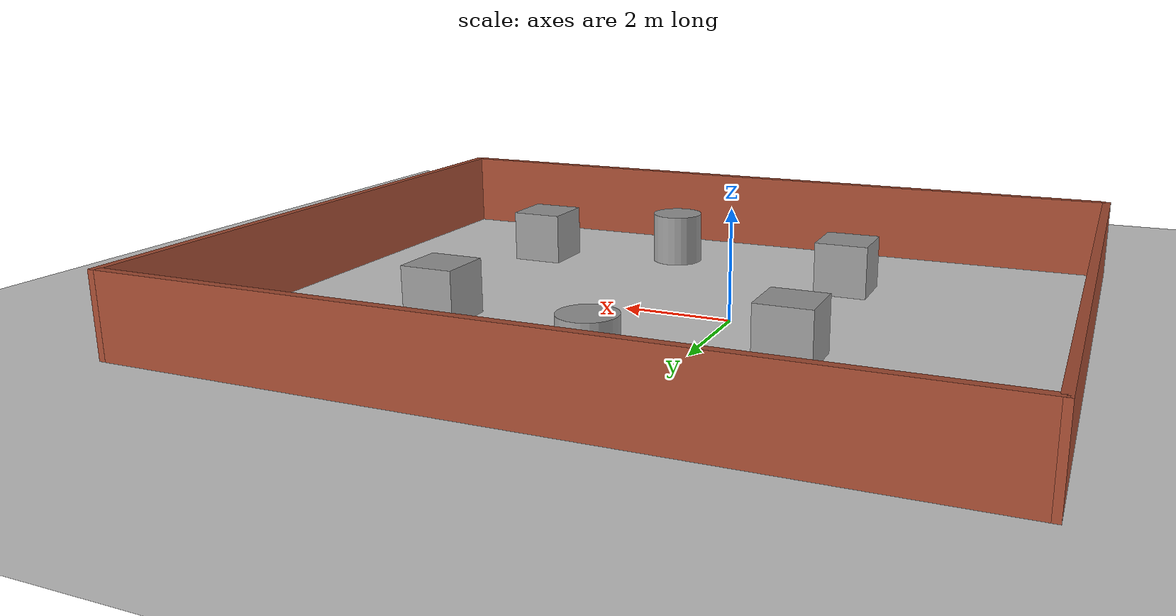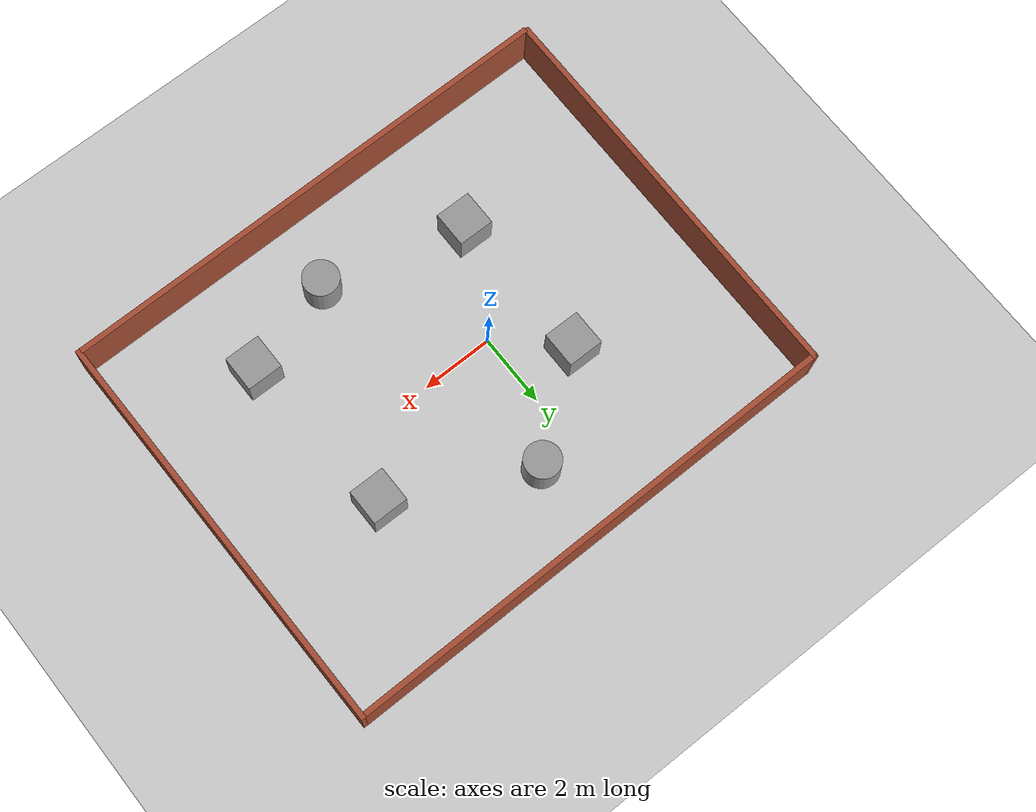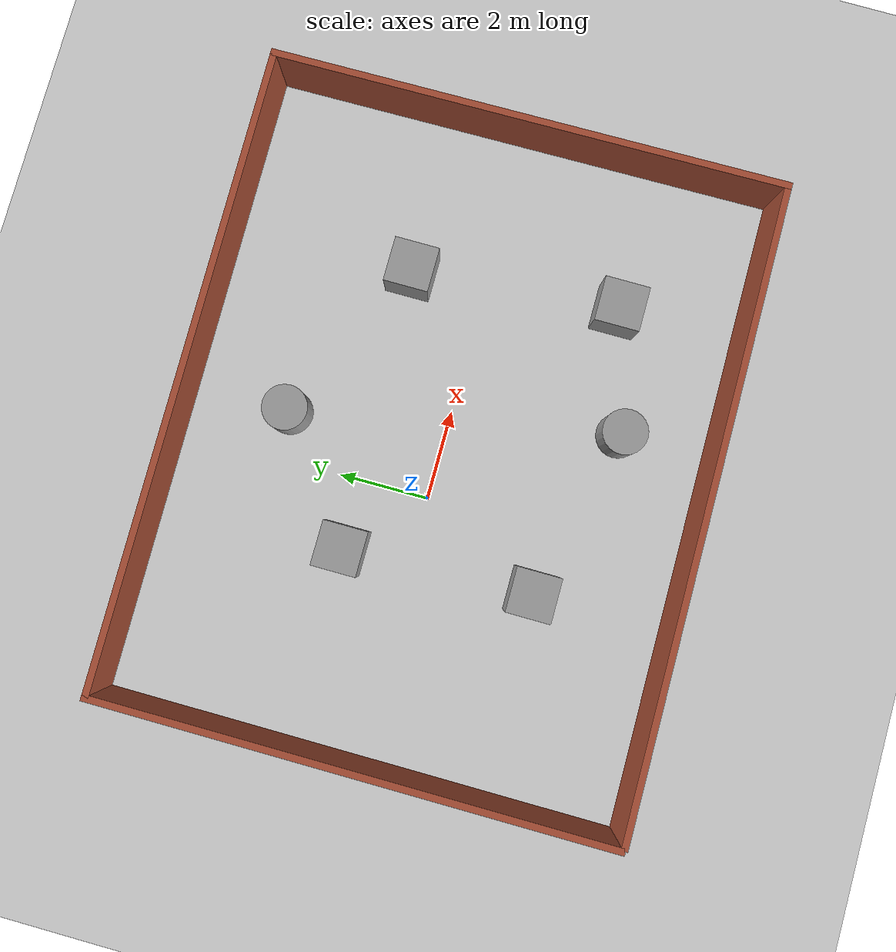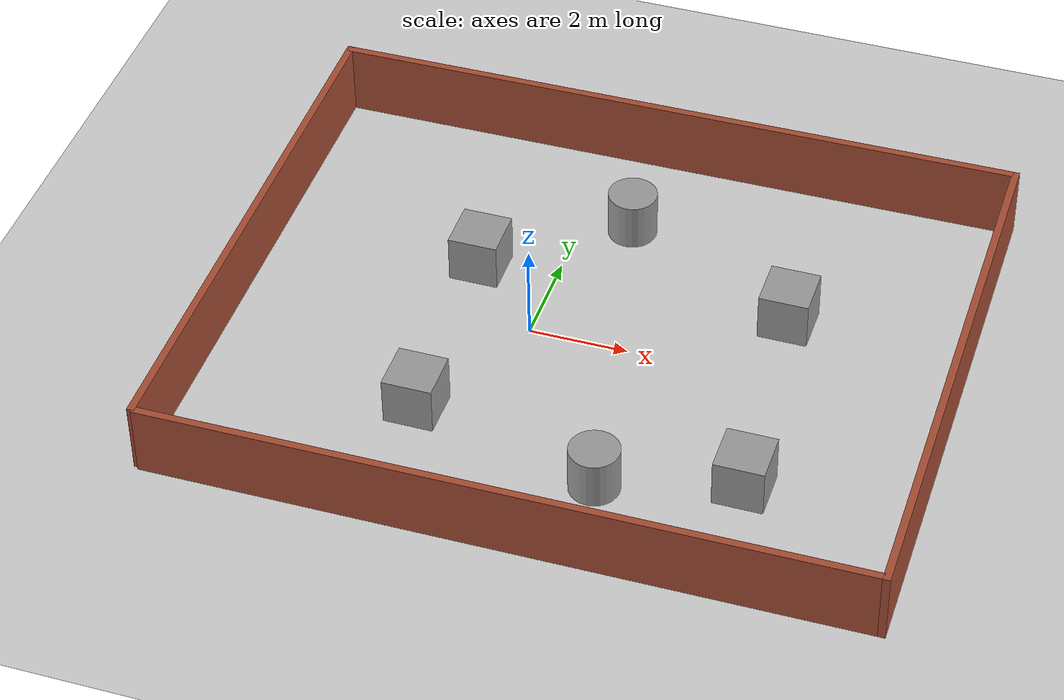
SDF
<sdf version="1.6">
 <world name="default">
  <scene><ambient>0.4 0.4 0.4 1</ambient><background>0.7 0.7 0.7 1</background><shadows>1</shadows></scene>
  <light name="sun" type="directional">
   <pose>0 0 10 0 -0 0</pose>
   <diffuse>0.8 0.8 0.8 1</diffuse>
   <specular>0.2 0.2 0.2 1</specular>
   <attenuation>
    <range>1000</range>
    <constant>0.9</constant>
    <linear>0.01</linear>
    <quadratic>0.001</quadratic>
   </attenuation>
   <direction>-0.5 0.1 -0.9</direction>
  </light>
  <model name="ground_plane">
   <static>1</static>
   <link name="link">
    <collision name="collision">
     <geometry><plane><normal>0 0 1</normal><size>100 100</size></plane></geometry>
     <surface>
      <contact><collide_bitmask>65535</collide_bitmask></contact>
      <friction><ode><mu>100</mu><mu2>50</mu2></ode></friction>
     </surface>
    </collision>
    <visual name="visual">
     <cast_shadows>0</cast_shadows>
     <geometry><plane><normal>0 0 1</normal><size>100 100</size></plane></geometry>
     <material>
      <script><uri>file://media/materials/scripts/gazebo.material</uri><name>Gazebo/Grey</name></script>
     </material>
    </visual>
   </link>
  </model>
  <model name="hall">
   <pose>1.32223 -0.005379 0 0 -0 0</pose>
   <link name="Wall_0">
    <collision name="Wall_0_Collision">
     <geometry><box><size>11.5 0.15 1.5</size></box></geometry>
     <pose>0 0 0.75 0 -0 0</pose>
    </collision>
    <visual name="Wall_0_Visual">
     <pose>0 0 0.75 0 -0 0</pose>
     <geometry><box><size>11.5 0.15 1.5</size></box></geometry>
     <material>
      <script><uri>file://media/materials/scripts/gazebo.material</uri><name>Gazebo/Bricks</name></script>
      <ambient>1 1 1 1</ambient>
     </material>
     <meta><layer>0</layer></meta>
    </visual>
    <pose>-7.15268 -0.042076 0 0 -0 1.5708</pose>
   </link>
   <link name="Wall_1">
    <collision name="Wall_1_Collision">
     <geometry><box><size>14.1825 0.15 1.5</size></box></geometry>
     <pose>0 0 0.75 0 -0 0</pose>
    </collision>
    <visual name="Wall_1_Visual">
     <pose>0 0 0.75 0 -0 0</pose>
     <geometry><box><size>14.1825 0.15 1.5</size></box></geometry>
     <material>
      <script><uri>file://media/materials/scripts/gazebo.material</uri><name>Gazebo/Bricks</name></script>
      <ambient>1 1 1 1</ambient>
     </material>
     <meta><layer>0</layer></meta>
    </visual>
    <pose>-0.096272 5.69861 0 0 -0 0.009362</pose>
   </link>
   <link name="Wall_2">
    <collision name="Wall_2_Collision">
     <geometry><box><size>11.5884 0.15 1.5</size></box></geometry>
     <pose>0 0 0.75 0 -0 0</pose>
    </collision>
    <visual name="Wall_2_Visual">
     <pose>0 0 0.75 0 -0 0</pose>
     <geometry><box><size>11.5884 0.15 1.5</size></box></geometry>
     <material>
      <script><uri>file://media/materials/scripts/gazebo.material</uri><name>Gazebo/Bricks</name></script>
      <ambient>1 1 1 1</ambient>
     </material>
     <meta><layer>0</layer></meta>
    </visual>
    <pose>7.09651 0.045335 0 0 -0 -1.5611</pose>
   </link>
   <link name="Wall_3">
    <collision name="Wall_3_Collision">
     <geometry><box><size>14.2431 0.15 1.5</size></box></geometry>
     <pose>0 0 0.75 0 -0 0</pose>
    </collision>
    <visual name="Wall_3_Visual">
     <pose>0 0 0.75 0 -0 0</pose>
     <geometry><box><size>14.2431 0.15 1.5</size></box></geometry>
     <material>
      <script><uri>file://media/materials/scripts/gazebo.material</uri><name>Gazebo/Bricks</name></script>
      <ambient>1 1 1 1</ambient>
     </material>
     <meta><layer>0</layer></meta>
    </visual>
    <pose>-0.015817 -5.71908 0 0 -0 -3.13514</pose>
   </link>
   <static>1</static>
  </model>
  <physics name="default_physics" default="0" type="ode">
   <real_time_update_rate>1000</real_time_update_rate>
   <max_step_size>0.001</max_step_size>
   <real_time_factor>1</real_time_factor>
   <ode>
    <solver>
     <type>quick</type>
     <iters>150</iters>
     <precon_iters>0</precon_iters>
     <sor>1.4</sor>
     <use_dynamic_moi_rescaling>1</use_dynamic_moi_rescaling>
    </solver>
    <constraints>
     <cfm>1e-05</cfm>
     <erp>0.2</erp>
     <contact_max_correcting_vel>2000</contact_max_correcting_vel>
     <contact_surface_layer>0.01</contact_surface_layer>
    </constraints>
   </ode>
  </physics>
  <gravity>0 0 -9.8</gravity>
  <magnetic_field>6e-06 2.3e-05 -4.2e-05</magnetic_field>
  <atmosphere type="adiabatic"/>
  <audio><device>default</device></audio>
  <spherical_coordinates>
   <surface_model>EARTH_WGS84</surface_model>
   <latitude_deg>0</latitude_deg>
   <longitude_deg>0</longitude_deg>
   <elevation>0</elevation>
   <heading_deg>0</heading_deg>
  </spherical_coordinates>
  <model name="unit_box">
   <pose>-1.38012 -2.7341 0.5 0 -0 0</pose>
   <link name="link">
    <inertial>
     <mass>1</mass>
     <inertia>
      <ixx>0.166667</ixx>
      <ixy>0</ixy>
      <ixz>0</ixz>
      <iyy>0.166667</iyy>
      <iyz>0</iyz>
      <izz>0.166667</izz>
     </inertia>
    </inertial>
    <collision name="collision"><geometry><box><size>1 1 1</size></box></geometry></collision>
    <visual name="visual">
     <geometry><box><size>1 1 1</size></box></geometry>
     <material>
      <script><name>Gazebo/Grey</name><uri>file://media/materials/scripts/gazebo.material</uri></script>
     </material>
    </visual>
   </link>
  </model>
  <model name="unit_box_0">
   <pose>-1.53472 1.50158 0.5 0 -0 0</pose>
   <link name="link">
    <inertial>
     <mass>1</mass>
     <inertia>
      <ixx>0.166667</ixx>
      <ixy>0</ixy>
      <ixz>0</ixz>
      <iyy>0.166667</iyy>
      <iyz>0</iyz>
      <izz>0.166667</izz>
     </inertia>
    </inertial>
    <collision name="collision"><geometry><box><size>1 1 1</size></box></geometry></collision>
    <visual name="visual">
     <geometry><box><size>1 1 1</size></box></geometry>
     <material>
      <script><name>Gazebo/Grey</name><uri>file://media/materials/scripts/gazebo.material</uri></script>
     </material>
    </visual>
   </link>
  </model>
  <model name="unit_box_1">
   <pose>5.17524 -2.95437 0.5 0 -0 0</pose>
   <link name="link">
    <inertial>
     <mass>1</mass>
     <inertia>
      <ixx>0.166667</ixx>
      <ixy>0</ixy>
      <ixz>0</ixz>
      <iyy>0.166667</iyy>
      <iyz>0</iyz>
      <izz>0.166667</izz>
     </inertia>
    </inertial>
    <collision name="collision"><geometry><box><size>1 1 1</size></box></geometry></collision>
    <visual name="visual">
     <geometry><box><size>1 1 1</size></box></geometry>
     <material>
      <script><name>Gazebo/Grey</name><uri>file://media/materials/scripts/gazebo.material</uri></script>
     </material>
    </visual>
   </link>
  </model>
  <model name="unit_box_2">
   <pose>4.78983 1.68635 0.5 0 -0 0</pose>
   <link name="link">
    <inertial>
     <mass>1</mass>
     <inertia>
      <ixx>0.166667</ixx>
      <ixy>0</ixy>
      <ixz>0</ixz>
      <iyy>0.166667</iyy>
      <iyz>0</iyz>
      <izz>0.166667</izz>
     </inertia>
    </inertial>
    <collision name="collision"><geometry><box><size>1 1 1</size></box></geometry></collision>
    <visual name="visual">
     <geometry><box><size>1 1 1</size></box></geometry>
     <material>
      <script><name>Gazebo/Grey</name><uri>file://media/materials/scripts/gazebo.material</uri></script>
     </material>
    </visual>
   </link>
  </model>
  <model name="unit_cylinder">
   <pose>1.04733 3.46425 0.499993 4e-06 4e-06 -0</pose>
   <link name="link">
    <inertial>
     <mass>1</mass>
     <inertia><ixx>0.145833</ixx><ixy>0</ixy><ixz>0</ixz><iyy>0.145833</iyy><iyz>0</iyz><izz>0.125</izz></inertia>
    </inertial>
    <collision name="collision">
     <geometry><cylinder><radius>0.5</radius><length>1</length></cylinder></geometry>
    </collision>
    <visual name="visual">
     <geometry><cylinder><radius>0.5</radius><length>1</length></cylinder></geometry>
     <material>
      <script><name>Gazebo/Grey</name><uri>file://media/materials/scripts/gazebo.material</uri></script>
     </material>
    </visual>
   </link>
  </model>
  <model name="unit_cylinder_0">
   <pose>2.4926 -3.71928 0.499997 -4e-06 -4e-06 -0</pose>
   <link name="link">
    <inertial>
     <mass>1</mass>
     <inertia><ixx>0.145833</ixx><ixy>0</ixy><ixz>0</ixz><iyy>0.145833</iyy><iyz>0</iyz><izz>0.125</izz></inertia>
    </inertial>
    <collision name="collision">
     <geometry><cylinder><radius>0.5</radius><length>1</length></cylinder></geometry>
    </collision>
    <visual name="visual">
     <geometry><cylinder><radius>0.5</radius><length>1</length></cylinder></geometry>
     <material>
      <script><name>Gazebo/Grey</name><uri>file://media/materials/scripts/gazebo.material</uri></script>
     </material>
    </visual>
   </link>
  </model>
 </world>
</sdf>
